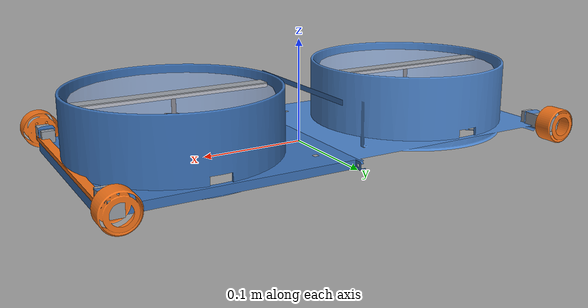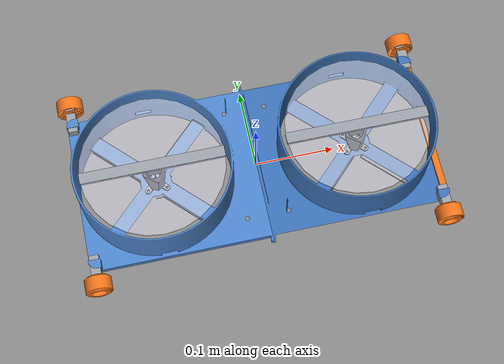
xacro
<?xml version="1.0"?>
<robot name="escalador" xmlns:xacro="http://www.ros.org/wiki/xacro">

  <xacro:arg name="sim" default="false"/>
  <!-- posición de los ejes de las llantas desde el centro (m). Ensamble: 0,2175 -->
  <xacro:arg name="rueda_x" default="0.2175"/>

  <!-- ================= Medidas del ensamble (m) ================= -->
  <xacro:property name="largo_base"    value="0.225"/>   <!-- cada base, en x -->
  <xacro:property name="ancho"         value="0.216"/>
  <xacro:property name="esp_placa"     value="0.010"/>
  <xacro:property name="ancho_repisa"  value="0.026"/>
  <xacro:property name="alto_repisa"   value="0.057"/>
  <xacro:property name="ducto_x"       value="0.127"/>   <!-- centro del ducto y del A2217 -->
  <xacro:property name="ducto_r"       value="0.0975"/>
  <xacro:property name="ducto_alto"    value="0.070"/>

  <!-- Llantas JSumo SLT20 (Ø33 × 21 mm, banda de 18 mm) -->
  <xacro:property name="r_rueda"       value="0.0165"/>
  <xacro:property name="ancho_rueda"   value="0.021"/>
  <xacro:property name="ancho_banda"   value="0.018"/>
  <xacro:property name="rueda_x"       value="$(arg rueda_x)"/>  <!-- ensamble: 0,2175 (9 mm por delante del chasis) -->
  <xacro:property name="rueda_y"       value="0.1195"/>  <!-- vía 239 mm, por fuera de la placa -->
  <xacro:property name="rueda_z"       value="0.0150"/>  <!-- eje 15 mm POR ENCIMA de la cara inferior -->
  <xacro:property name="via"           value="${2*rueda_y}"/>
  <xacro:property name="par_rueda"     value="0.2"/>     <!-- N·m máximo por N20 -->
  <xacro:property name="vel_rueda"     value="30"/>
  <xacro:property name="mu_rueda"      value="1.0"/>

  <!-- N20 (caja de 12 × 13,2 × 35,9 mm) sobre el borde de la placa, junto a cada llanta -->
  <xacro:property name="n20_y"         value="0.101"/>
  <xacro:property name="n20_z"         value="0.0146"/>

  <!-- Hélices dentro de los ductos, encima del A2217 -->
  <xacro:property name="d_helice"      value="0.178"/>   <!-- 7 pulgadas: ajusta a la tuya -->
  <xacro:property name="altura_helice" value="0.062"/>

  <!-- Masas (kg), hardware/lista_materiales.md. Total = 1,225 kg:
       bases 2 × 220 g + todo lo demás 785 g (peor caso que da el equipo) -->
  <xacro:property name="masa_bases"    value="0.440"/>
  <!-- 785 g − motores 153 − hélices 19 − N20 52 − llantas 48 = 513 g: batería, porta pilas,
       BMS, 2 ESC, PCB, ESP32, buck, regletas, IMU, puente H, tornillería y cables -->
  <xacro:property name="masa_electronica" value="0.513"/>
  <xacro:property name="z_electronica" value="0.030"/>
  <xacro:property name="masa_motor"    value="0.0765"/>  <!-- cada A2217 (153 g el par) -->
  <xacro:property name="masa_helice"   value="0.0095"/>
  <xacro:property name="masa_n20"      value="0.013"/>
  <xacro:property name="masa_rueda"    value="0.012"/>
  <xacro:property name="masa_chasis"   value="${masa_bases + masa_electronica}"/>
  <xacro:property name="z_cm_chasis"   value="${(masa_bases*0.0172 + masa_electronica*z_electronica)/masa_chasis}"/>

  <xacro:property name="mallas" value="package://robot_trepador_description/meshes"/>

  <!-- ================= Materiales ================= -->
  <material name="base">    <color rgba="0.23 0.44 0.71 1"/></material>
  <material name="base2">   <color rgba="0.30 0.52 0.80 1"/></material>
  <material name="naranja"> <color rgba="0.95 0.45 0.10 1"/></material>
  <material name="gris">    <color rgba="0.60 0.62 0.65 1"/></material>
  <material name="negro">   <color rgba="0.15 0.15 0.17 1"/></material>
  <material name="helice">  <color rgba="0.85 0.85 0.90 0.55"/></material>

  <!-- ================= Chasis: las dos bases y los soportes de los A2217 ================= -->
  <link name="base_link">
    <visual>
      <geometry><mesh filename="${mallas}/base_delantera.stl"/></geometry>
      <material name="base"/>
    </visual>
    <visual>
      <geometry><mesh filename="${mallas}/base_trasera.stl"/></geometry>
      <material name="base2"/>
    </visual>
    <visual>
      <geometry><mesh filename="${mallas}/soporte_motor_delantero.stl"/></geometry>
      <material name="gris"/>
    </visual>
    <visual>
      <geometry><mesh filename="${mallas}/soporte_motor_trasero.stl"/></geometry>
      <material name="gris"/>
    </visual>
    <!-- franja naranja = delante (igual que en la vista 3D de la interfaz) -->
    <visual>
      <origin xyz="${largo_base - 0.004} 0 ${esp_placa + 0.002}"/>
      <geometry><box size="0.008 ${ancho - 0.02} 0.004"/></geometry>
      <material name="naranja"/>
    </visual>

    <!-- Colisiones con formas simples (más rápidas y estables que la malla) -->
    <collision>  <!-- placa -->
      <origin xyz="0 0 ${esp_placa/2}"/>
      <geometry><box size="${2*largo_base} ${ancho} ${esp_placa}"/></geometry>
    </collision>
    <collision>  <!-- ducto delantero -->
      <origin xyz="${ducto_x} 0 ${(esp_placa + ducto_alto)/2}"/>
      <geometry><cylinder radius="${ducto_r}" length="${ducto_alto - esp_placa}"/></geometry>
    </collision>
    <collision>  <!-- ducto trasero -->
      <origin xyz="${-ducto_x} 0 ${(esp_placa + ducto_alto)/2}"/>
      <geometry><cylinder radius="${ducto_r}" length="${ducto_alto - esp_placa}"/></geometry>
    </collision>
    <collision>  <!-- repisas -->
      <origin xyz="0 0 ${(esp_placa + alto_repisa)/2}"/>
      <geometry><box size="${2*ancho_repisa} ${ancho} ${alto_repisa - esp_placa}"/></geometry>
    </collision>

    <inertial>
      <origin xyz="0 0 ${z_cm_chasis}"/>
      <mass value="${masa_chasis}"/>
      <inertia ixx="${0.004479*masa_bases + masa_electronica*(0.15*0.15 + 0.04*0.04)/12}" ixy="0" ixz="0"
               iyy="${0.016294*masa_bases + masa_electronica*(0.10*0.10 + 0.04*0.04)/12}" iyz="0"
               izz="${0.019963*masa_bases + masa_electronica*(0.10*0.10 + 0.15*0.15)/12}"/>
    </inertial>
  </link>

  <!-- ================= Llantas y N20 ================= -->
  <xacro:macro name="rueda" params="nombre sx sy lado">
    <link name="rueda_${nombre}">
      <visual>
        <geometry><mesh filename="${mallas}/llanta_${lado}.stl"/></geometry>
        <material name="naranja"/>
      </visual>
      <collision>
        <origin rpy="${pi/2} 0 0"/>
        <geometry><cylinder radius="${r_rueda}" length="${ancho_banda}"/></geometry>
      </collision>
      <inertial>
        <mass value="${masa_rueda}"/>
        <inertia ixx="${masa_rueda*(3*r_rueda*r_rueda + ancho_rueda*ancho_rueda)/12}" ixy="0" ixz="0"
                 iyy="${masa_rueda*r_rueda*r_rueda/2}" iyz="0"
                 izz="${masa_rueda*(3*r_rueda*r_rueda + ancho_rueda*ancho_rueda)/12}"/>
      </inertial>
    </link>
    <joint name="rueda_${nombre}_joint" type="continuous">
      <parent link="base_link"/>
      <child link="rueda_${nombre}"/>
      <origin xyz="${sx*rueda_x} ${sy*rueda_y} ${rueda_z}"/>
      <axis xyz="0 1 0"/>
      <limit effort="${par_rueda}" velocity="${vel_rueda}"/>
    </joint>
    <gazebo reference="rueda_${nombre}">
      <mu1>${mu_rueda}</mu1>
      <mu2>${mu_rueda}</mu2>
    </gazebo>

    <!-- N20 fijo sobre el borde de la placa; su eje entra en la llanta -->
    <link name="n20_${nombre}">
      <visual>
        <geometry><box size="0.012 0.0359 0.0132"/></geometry>
        <material name="gris"/>
      </visual>
      <inertial>
        <mass value="${masa_n20}"/>
        <inertia ixx="1.6e-6" ixy="0" ixz="0" iyy="3.5e-7" iyz="0" izz="1.6e-6"/>
      </inertial>
    </link>
    <joint name="n20_${nombre}_joint" type="fixed">
      <parent link="base_link"/>
      <child link="n20_${nombre}"/>
      <origin xyz="${sx*rueda_x} ${sy*n20_y} ${n20_z}"/>
    </joint>
  </xacro:macro>

  <xacro:rueda nombre="del_izq" sx="1"  sy="1"  lado="izq"/>
  <xacro:rueda nombre="del_der" sx="1"  sy="-1" lado="der"/>
  <xacro:rueda nombre="tra_izq" sx="-1" sy="1"  lado="izq"/>
  <xacro:rueda nombre="tra_der" sx="-1" sy="-1" lado="der"/>

  <!-- ================= A2217 y hélices (una por ducto) ================= -->
  <!-- El eje de la hélice apunta a −z: el empuje positivo aprieta el robot contra la superficie -->
  <xacro:macro name="helice" params="nombre sx">
    <link name="motor_${nombre}">
      <visual>
        <geometry><mesh filename="${mallas}/a2217_${nombre}.stl"/></geometry>
        <material name="negro"/>
      </visual>
      <inertial>
        <origin xyz="${sx*ducto_x} 0 0.035"/>
        <mass value="${masa_motor}"/>
        <inertia ixx="1.5e-5" ixy="0" ixz="0" iyy="1.5e-5" iyz="0" izz="7e-6"/>
      </inertial>
    </link>
    <joint name="motor_${nombre}_joint" type="fixed">
      <parent link="base_link"/>
      <child link="motor_${nombre}"/>
    </joint>

    <link name="helice_${nombre}">
      <visual>
        <geometry><cylinder radius="${d_helice/2}" length="0.002"/></geometry>
        <material name="helice"/>
      </visual>
      <visual>
        <geometry><box size="${d_helice} 0.014 0.004"/></geometry>
        <material name="gris"/>
      </visual>
      <inertial>
        <mass value="${masa_helice}"/>
        <inertia ixx="${masa_helice*d_helice*d_helice/48}" ixy="0" ixz="0"
                 iyy="${masa_helice*d_helice*d_helice/48}" iyz="0"
                 izz="${masa_helice*d_helice*d_helice/24}"/>
      </inertial>
    </link>
    <joint name="helice_${nombre}_joint" type="continuous">
      <parent link="base_link"/>
      <child link="helice_${nombre}"/>
      <origin xyz="${sx*ducto_x} 0 ${altura_helice}"/>
      <axis xyz="0 0 -1"/>
    </joint>
  </xacro:macro>

  <xacro:helice nombre="delantero" sx="1"/>
  <xacro:helice nombre="trasero"   sx="-1"/>

  <!-- ================= IMU (MPU6050), en la zona de las repisas ================= -->
  <link name="imu_link"/>
  <joint name="imu_joint" type="fixed">
    <parent link="base_link"/>
    <child link="imu_link"/>
    <origin xyz="0 0 ${esp_placa + 0.02}"/>
  </joint>

  <!-- ================= Plugins de Gazebo Harmonic ================= -->
  <xacro:if value="$(arg sim)">
    <gazebo reference="base_link">
      <mu1>0.3</mu1>
      <mu2>0.3</mu2>
    </gazebo>

    <gazebo reference="imu_link">
      <sensor name="imu" type="imu">
        <always_on>true</always_on>
        <update_rate>50</update_rate>
        <topic>/robot/imu_gz</topic>
        <gz_frame_id>imu_link</gz_frame_id>
      </sensor>
    </gazebo>

    <gazebo>
      <!-- Tracción diferencial: los dos N20 de cada lado reciben la misma orden -->
      <plugin filename="gz-sim-diff-drive-system" name="gz::sim::systems::DiffDrive">
        <left_joint>rueda_del_izq_joint</left_joint>
        <left_joint>rueda_tra_izq_joint</left_joint>
        <right_joint>rueda_del_der_joint</right_joint>
        <right_joint>rueda_tra_der_joint</right_joint>
        <wheel_separation>${via}</wheel_separation>
        <wheel_radius>${r_rueda}</wheel_radius>
        <topic>/model/escalador/cmd_vel</topic>
        <odom_topic>/model/escalador/odometria_plana</odom_topic>
        <tf_topic>/model/escalador/tf_plana</tf_topic>
      </plugin>

      <!-- Succión de cada ducto: reciben el empuje en N (std_msgs/Float64 desde ROS) -->
      <xacro:macro name="empuje" params="nombre topico">
        <plugin filename="gz-sim-thruster-system" name="gz::sim::systems::Thruster">
          <namespace>escalador</namespace>
          <joint_name>helice_${nombre}_joint</joint_name>
          <topic>${topico}</topic>
          <thrust_coefficient>0.1</thrust_coefficient>
          <fluid_density>1.2</fluid_density>
          <propeller_diameter>${d_helice}</propeller_diameter>
          <velocity_control>true</velocity_control>
          <use_angvel_cmd>false</use_angvel_cmd>
          <min_thrust_cmd>0</min_thrust_cmd>
          <max_thrust_cmd>40</max_thrust_cmd>
        </plugin>
      </xacro:macro>
      <xacro:empuje nombre="delantero" topico="empuje_delantero"/>
      <xacro:empuje nombre="trasero"   topico="empuje_trasero"/>

      <!-- Posición real en 3D (también en la pared y el techo) para RViz -->
      <plugin filename="gz-sim-odometry-publisher-system" name="gz::sim::systems::OdometryPublisher">
        <odom_frame>odom</odom_frame>
        <robot_base_frame>base_link</robot_base_frame>
        <odom_publish_frequency>50</odom_publish_frequency>
        <dimensions>3</dimensions>
        <odom_topic>/model/escalador/odometria</odom_topic>
        <tf_topic>/model/escalador/tf</tf_topic>
      </plugin>

      <plugin filename="gz-sim-joint-state-publisher-system" name="gz::sim::systems::JointStatePublisher">
        <topic>/model/escalador/joint_states</topic>
      </plugin>
    </gazebo>
  </xacro:if>

</robot>
